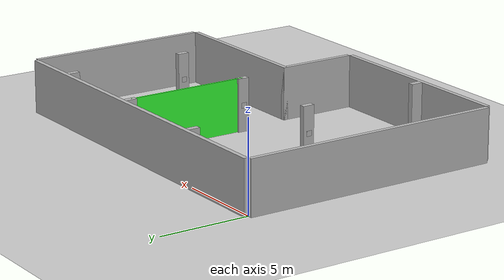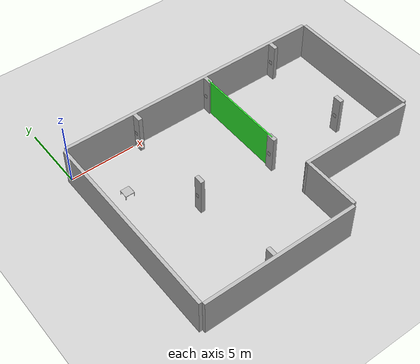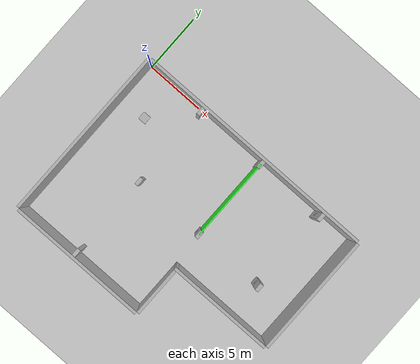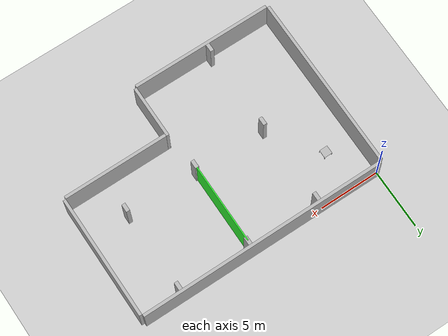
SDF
<sdf version="1.7">
 <world name="castelldefels_indoors">
  <light name="sun" type="directional">
   <pose>0 0 10 0 -0 0</pose>
   <diffuse>0.8 0.8 0.8 1</diffuse>
   <specular>0.2 0.03 0.2 1</specular>
   <attenuation>
    <range>1000</range>
    <constant>0.9</constant>
    <linear>0.01</linear>
    <quadratic>0.001</quadratic>
   </attenuation>
   <direction>-0.5 0.1 -0.9</direction>
  </light>
  <model name="ground_plane">
   <static>true</static>
   <link name="ground_plane_link">
    <collision name="collision">
     <geometry><plane><normal>0 0 1</normal><size>100 100</size></plane></geometry>
    </collision>
    <visual name="visual"><geometry><plane><normal>0 0 1</normal><size>100 100</size></plane></geometry></visual>
   </link>
  </model>
  <model name="column_1">
   <static>true</static>
   <link name="column_1_link">
    <collision name="collision"><geometry><box><size>0.31 0.66 3.0</size></box></geometry></collision>
    <visual name="visual"><geometry><box><size>0.31 0.66 3.0</size></box></geometry></visual>
   </link>
   <pose>5.415 -0.33 1.5 0 0 0</pose>
  </model>
  <model name="column_2">
   <static>true</static>
   <link name="column_2_link">
    <collision name="collision"><geometry><box><size>0.31 0.66 3.0</size></box></geometry></collision>
    <visual name="visual"><geometry><box><size>0.31 0.66 3.0</size></box></geometry></visual>
   </link>
   <pose>11.435 -0.33 1.5 0 0 0</pose>
  </model>
  <model name="column_3">
   <static>true</static>
   <link name="column_3_link">
    <collision name="collision"><geometry><box><size>0.31 0.66 3.0</size></box></geometry></collision>
    <visual name="visual"><geometry><box><size>0.31 0.66 3.0</size></box></geometry></visual>
   </link>
   <pose>17.424999999999997 -0.33 1.5 0 0 0</pose>
  </model>
  <model name="column_4">
   <static>true</static>
   <link name="column_4_link">
    <collision name="collision"><geometry><box><size>0.31 0.66 3.0</size></box></geometry></collision>
    <visual name="visual"><geometry><box><size>0.31 0.66 3.0</size></box></geometry></visual>
   </link>
   <pose>5.415 -7.33 1.5 0 0 0</pose>
  </model>
  <model name="column_5">
   <static>true</static>
   <link name="column_5_link">
    <collision name="collision"><geometry><box><size>0.31 0.66 3.0</size></box></geometry></collision>
    <visual name="visual"><geometry><box><size>0.31 0.66 3.0</size></box></geometry></visual>
   </link>
   <pose>11.435 -7.33 1.5 0 0 0</pose>
  </model>
  <model name="column_6">
   <static>true</static>
   <link name="column_6_link">
    <collision name="collision"><geometry><box><size>0.31 0.66 3.0</size></box></geometry></collision>
    <visual name="visual"><geometry><box><size>0.31 0.66 3.0</size></box></geometry></visual>
   </link>
   <pose>17.424999999999997 -7.33 1.5 0 0 0</pose>
  </model>
  <model name="column_7">
   <static>true</static>
   <link name="column_7_link">
    <collision name="collision"><geometry><box><size>0.31 0.66 3.0</size></box></geometry></collision>
    <visual name="visual"><geometry><box><size>0.31 0.66 3.0</size></box></geometry></visual>
   </link>
   <pose>5.415 -14.43 1.5 0 0 0</pose>
  </model>
  <model name="wall_1">
   <static>true</static>
   <link name="wall_1_link">
    <collision name="collision"><geometry><box><size>20.69 0.25 3.0</size></box></geometry></collision>
    <visual name="visual"><geometry><box><size>20.69 0.25 3.0</size></box></geometry></visual>
   </link>
   <pose>10.345 0.125 1.5 0 0 0.0</pose>
  </model>
  <model name="wall_2">
   <static>true</static>
   <link name="wall_2_link">
    <collision name="collision"><geometry><box><size>10.3 0.25 3.0</size></box></geometry></collision>
    <visual name="visual"><geometry><box><size>10.3 0.25 3.0</size></box></geometry></visual>
   </link>
   <pose>20.815 -5.15 1.5 0 0 -1.5707963267948966</pose>
  </model>
  <model name="wall_3">
   <static>true</static>
   <link name="wall_3_link">
    <collision name="collision"><geometry><box><size>8.95 0.25 3.0</size></box></geometry></collision>
    <visual name="visual"><geometry><box><size>8.95 0.25 3.0</size></box></geometry></visual>
   </link>
   <pose>16.215000000000003 -10.425 1.5 0 0 3.141592653589793</pose>
  </model>
  <model name="wall_4">
   <static>true</static>
   <link name="wall_4_link">
    <collision name="collision"><geometry><box><size>4.46 0.25 3.0</size></box></geometry></collision>
    <visual name="visual"><geometry><box><size>4.46 0.25 3.0</size></box></geometry></visual>
   </link>
   <pose>11.865 -12.530000000000001 1.5 0 0 4.71238898038469</pose>
  </model>
  <model name="wall_5">
   <static>true</static>
   <link name="wall_5_link">
    <collision name="collision"><geometry><box><size>11.74 0.25 3.0</size></box></geometry></collision>
    <visual name="visual"><geometry><box><size>11.74 0.25 3.0</size></box></geometry></visual>
   </link>
   <pose>5.87 -14.885 1.5 0 0 3.141592653589793</pose>
  </model>
  <model name="wall_6">
   <static>true</static>
   <link name="wall_6_link">
    <collision name="collision"><geometry><box><size>14.76 0.25 3.0</size></box></geometry></collision>
    <visual name="visual"><geometry><box><size>14.76 0.25 3.0</size></box></geometry></visual>
   </link>
   <pose>-0.12499999999999954 -7.38 1.5 0 0 1.5707963267948966</pose>
  </model>
  <model name="aruco_marker_0">
   <static>true</static>
   <link name="aruco_marker_0_link">
    <visual name="visual">
     <geometry><box><size>0.3 0.001 0.3</size></box></geometry>
     <material><script><uri>file://aruco_marker_0.material</uri><name>ArucoMarker0</name></script></material>
    </visual>
   </link>
   <pose>5.21 -0.33 1.5 0 0 -4.7124</pose>
  </model>
  <model name="aruco_marker_1">
   <static>true</static>
   <link name="aruco_marker_1_link">
    <visual name="visual">
     <geometry><box><size>0.3 0.001 0.3</size></box></geometry>
     <material><script><uri>file://aruco_marker_1.material</uri><name>ArucoMarker1</name></script></material>
    </visual>
   </link>
   <pose>11.23 -0.33 1.5 0 0 -4.7124</pose>
  </model>
  <model name="aruco_marker_2">
   <static>true</static>
   <link name="aruco_marker_2_link">
    <visual name="visual">
     <geometry><box><size>0.3 0.001 0.3</size></box></geometry>
     <material><script><uri>file://aruco_marker_2.material</uri><name>ArucoMarker2</name></script></material>
    </visual>
   </link>
   <pose>17.22 -0.33 1.5 0 0 -4.7124</pose>
  </model>
  <model name="aruco_marker_3">
   <static>true</static>
   <link name="aruco_marker_3_link">
    <visual name="visual">
     <geometry><box><size>0.3 0.001 0.3</size></box></geometry>
     <material><script><uri>file://aruco_marker_3.material</uri><name>ArucoMarker3</name></script></material>
    </visual>
   </link>
   <pose>5.21 -7.33 1.5 0 0 -4.7124</pose>
  </model>
  <model name="aruco_marker_4">
   <static>true</static>
   <link name="aruco_marker_4_link">
    <visual name="visual">
     <geometry><box><size>0.3 0.001 0.3</size></box></geometry>
     <material><script><uri>file://aruco_marker_4.material</uri><name>ArucoMarker4</name></script></material>
    </visual>
   </link>
   <pose>11.23 -7.33 1.5 0 0 -4.7124</pose>
  </model>
  <model name="aruco_marker_5">
   <static>true</static>
   <link name="aruco_marker_5_link">
    <visual name="visual">
     <geometry><box><size>0.3 0.001 0.3</size></box></geometry>
     <material><script><uri>file://aruco_marker_5.material</uri><name>ArucoMarker5</name></script></material>
    </visual>
   </link>
   <pose>17.22 -7.33 1.5 0 0 -4.7124</pose>
  </model>
  <include><uri>model://table</uri><name>table_1</name><pose>2.281591 -3.420889 0 0 0 0</pose></include>
  <model name="wall_column_2_to_5">
   <static>true</static>
   <link name="green_wall">
    <collision name="collision"><geometry><box><size>7.0 0.1 3.0</size></box></geometry></collision>
    <visual name="visual">
     <geometry><box><size>7.0 0.1 3.0</size></box></geometry>
     <material><ambient>0.1 0.8 0.1 1</ambient><diffuse>0.2 1 0.2 1</diffuse></material>
    </visual>
   </link>
   <pose>11.435 -3.83 1.5 0 0 1.5707963267948966</pose>
  </model>
 </world>
</sdf>

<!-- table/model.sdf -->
<sdf version="1.7">
  <model name="table">
    <static>true</static>
    <link name="link">
      <collision name="collision">
        <geometry>
          <mesh>
            <uri>model://table/meshes/table.dae</uri>
          </mesh>
        </geometry>
      </collision>
      <visual name="visual">
        <geometry>
          <mesh>
            <uri>model://table/meshes/table.dae</uri>
          </mesh>
        </geometry>
      </visual>
    </link>
  </model>
</sdf>
